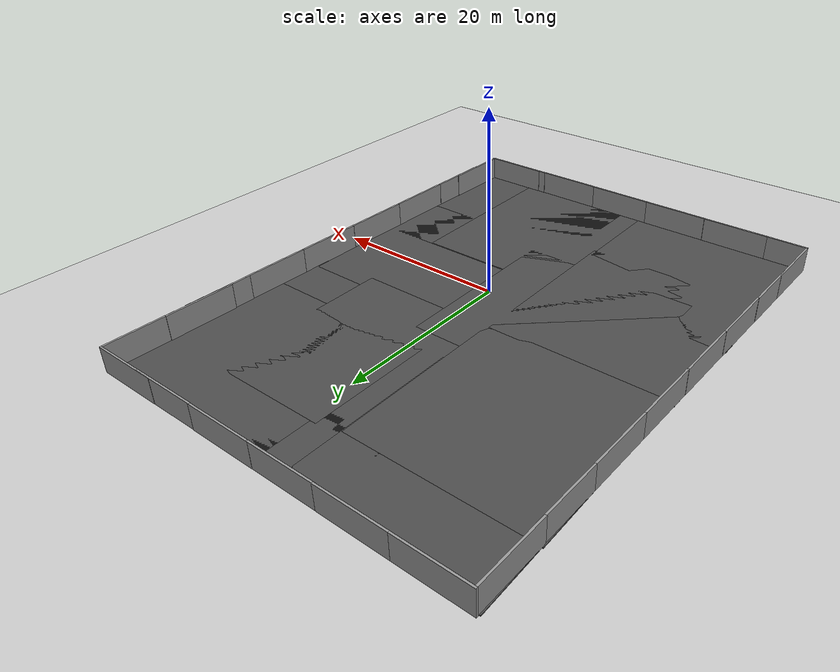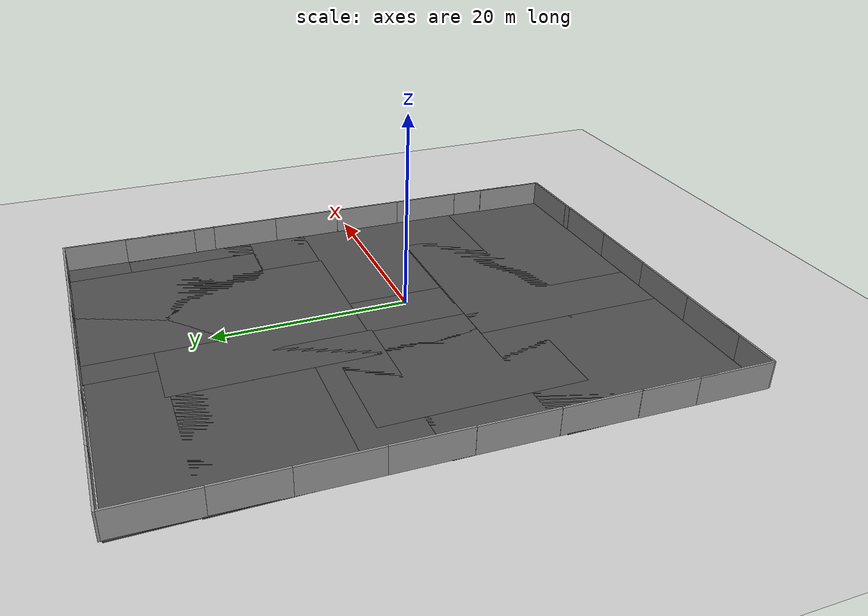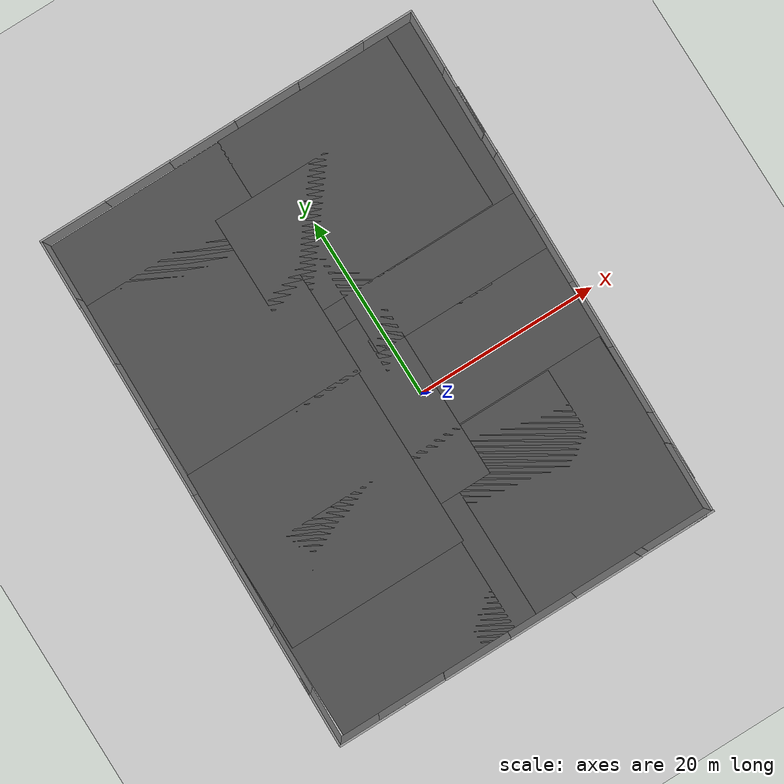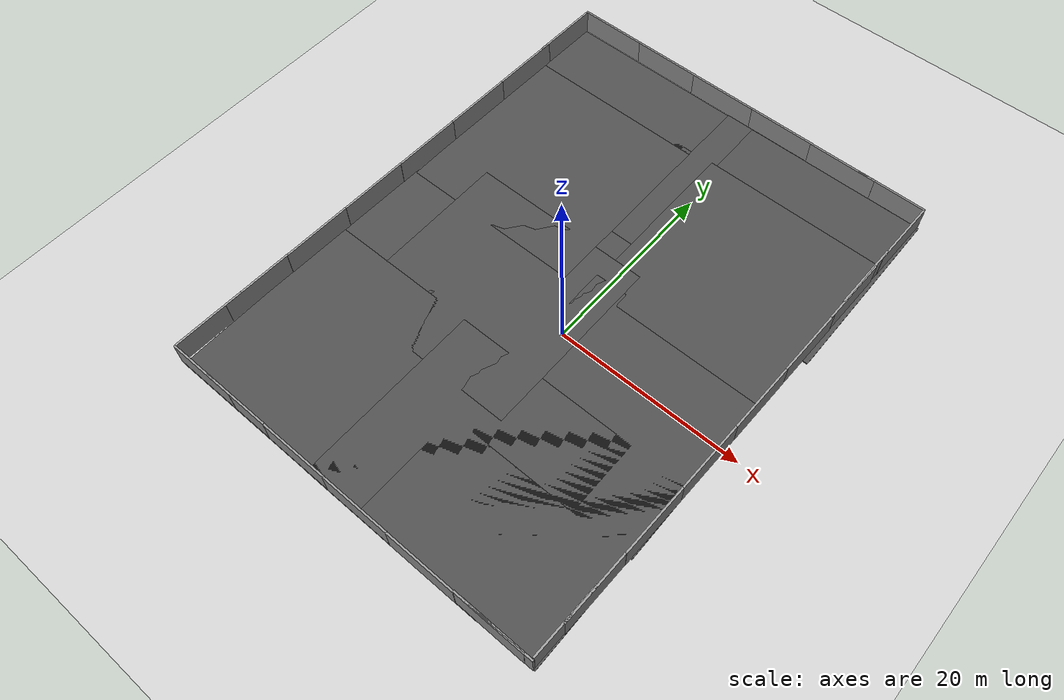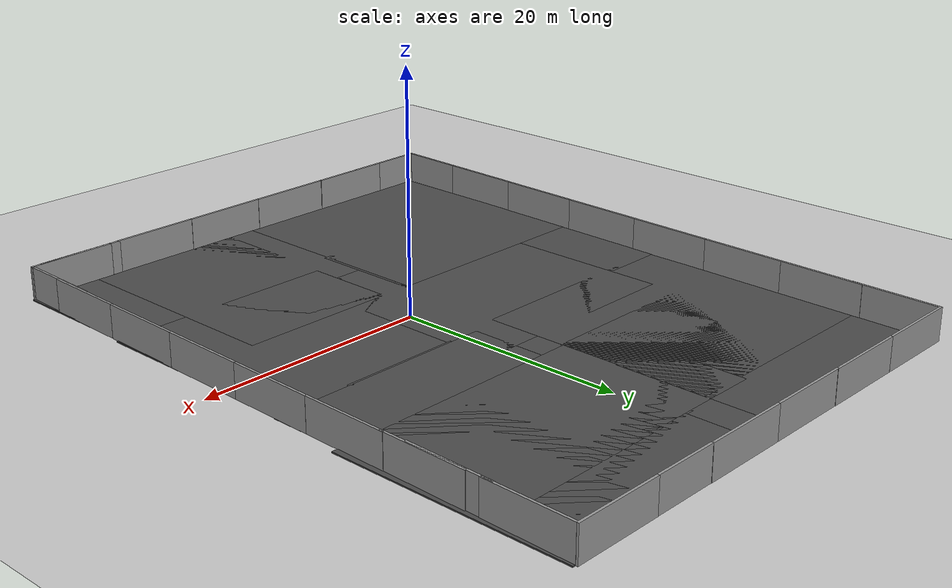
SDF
<sdf version="1.6">
 <world name="default">
  <physics name="default_physics" default="0" type="ode">
   <ode>
    <solver>
     <type>quick</type>
     <iters>20</iters>
     <sor>1</sor>
     <use_dynamic_moi_rescaling>0</use_dynamic_moi_rescaling>
    </solver>
    <constraints>
     <cfm>0</cfm>
     <erp>0.2</erp>
     <contact_max_correcting_vel>100</contact_max_correcting_vel>
     <contact_surface_layer>0</contact_surface_layer>
    </constraints>
   </ode>
   <max_step_size>0.001</max_step_size>
   <real_time_factor>1</real_time_factor>
   <real_time_update_rate>1000</real_time_update_rate>
  </physics>
  <light name="sun" type="directional">
   <pose>0 0 10 0 -0 0</pose>
   <diffuse>0.8 0.8 0.8 1</diffuse>
   <specular>0.1 0.1 0.1 1</specular>
   <attenuation>
    <range>1000</range>
    <constant>0.9</constant>
    <linear>0.01</linear>
    <quadratic>0.001</quadratic>
   </attenuation>
   <direction>-0.5 0.5 -1</direction>
  </light>
  <model name="ground_plane">
   <static>1</static>
   <link name="link">
    <collision name="collision">
     <geometry><plane><normal>0 0 1</normal><size>100 100</size></plane></geometry>
     <surface><friction><ode><mu>100</mu><mu2>50</mu2></ode></friction></surface>
    </collision>
    <visual name="visual">
     <cast_shadows>0</cast_shadows>
     <geometry><plane><normal>0 0 1</normal><size>100 100</size></plane></geometry>
     <material>
      <script><uri>file://media/materials/scripts/gazebo.material</uri><name>Gazebo/Grey</name></script>
     </material>
    </visual>
   </link>
  </model>
  <gravity>0 0 -9.8</gravity>
  <magnetic_field>6e-06 2.3e-05 -4.2e-05</magnetic_field>
  <atmosphere type="adiabatic"/>
  <scene><ambient>0.4 0.4 0.4 1</ambient><background>0.7 0.7 0.7 1</background><shadows>1</shadows></scene>
  <spherical_coordinates>
   <surface_model>EARTH_WGS84</surface_model>
   <latitude_deg>0</latitude_deg>
   <longitude_deg>0</longitude_deg>
   <elevation>0</elevation>
   <heading_deg>0</heading_deg>
  </spherical_coordinates>
  <model name="grey_wall_clone_4_clone_10_clone_5_clone">
   <static>1</static>
   <link name="link">
    <pose>0 0 1.4 0 -0 0</pose>
    <collision name="collision"><geometry><box><size>7.5 0.2 2.8</size></box></geometry></collision>
    <visual name="visual">
     <cast_shadows>0</cast_shadows>
     <geometry><box><size>7.5 0.2 2.8</size></box></geometry>
     <material>
      <script>
       <uri>model://grey_wall/materials/scripts</uri>
       <uri>model://grey_wall/materials/textures</uri>
       <name>vrc/grey_wall</name>
      </script>
     </material>
    </visual>
   </link>
   <pose>17.9559 -17.1408 0 0 -0 1.55043</pose>
  </model>
  <model name="grey_wall_clone_4_clone_10_clone_5_clone_0">
   <static>1</static>
   <link name="link">
    <pose>0 0 1.4 0 -0 0</pose>
    <collision name="collision"><geometry><box><size>7.5 0.2 2.8</size></box></geometry></collision>
    <visual name="visual">
     <cast_shadows>0</cast_shadows>
     <geometry><box><size>7.5 0.2 2.8</size></box></geometry>
     <material>
      <script>
       <uri>model://grey_wall/materials/scripts</uri>
       <uri>model://grey_wall/materials/textures</uri>
       <name>vrc/grey_wall</name>
      </script>
     </material>
    </visual>
   </link>
   <pose>18.1292 -9.70378 0 0 -0 1.55043</pose>
  </model>
  <model name="grey_wall_clone_4_clone_10_clone_5_clone_1">
   <static>1</static>
   <link name="link">
    <pose>0 0 1.4 0 -0 0</pose>
    <collision name="collision"><geometry><box><size>7.5 0.2 2.8</size></box></geometry></collision>
    <visual name="visual">
     <cast_shadows>0</cast_shadows>
     <geometry><box><size>7.5 0.2 2.8</size></box></geometry>
     <material>
      <script>
       <uri>model://grey_wall/materials/scripts</uri>
       <uri>model://grey_wall/materials/textures</uri>
       <name>vrc/grey_wall</name>
      </script>
     </material>
    </visual>
   </link>
   <pose>18.2818 -2.24012 0 0 -0 1.55043</pose>
  </model>
  <model name="grey_wall_clone_4_clone_10_clone_5_clone_2">
   <static>1</static>
   <link name="link">
    <pose>0 0 1.4 0 -0 0</pose>
    <collision name="collision"><geometry><box><size>7.5 0.2 2.8</size></box></geometry></collision>
    <visual name="visual">
     <cast_shadows>0</cast_shadows>
     <geometry><box><size>7.5 0.2 2.8</size></box></geometry>
     <material>
      <script>
       <uri>model://grey_wall/materials/scripts</uri>
       <uri>model://grey_wall/materials/textures</uri>
       <name>vrc/grey_wall</name>
      </script>
     </material>
    </visual>
   </link>
   <pose>18.439 5.22229 0 0 -0 1.55043</pose>
  </model>
  <model name="grey_wall_clone_4_clone_10_clone_5_clone_3">
   <static>1</static>
   <link name="link">
    <pose>0 0 1.4 0 -0 0</pose>
    <collision name="collision"><geometry><box><size>7.5 0.2 2.8</size></box></geometry></collision>
    <visual name="visual">
     <cast_shadows>0</cast_shadows>
     <geometry><box><size>7.5 0.2 2.8</size></box></geometry>
     <material>
      <script>
       <uri>model://grey_wall/materials/scripts</uri>
       <uri>model://grey_wall/materials/textures</uri>
       <name>vrc/grey_wall</name>
      </script>
     </material>
    </visual>
   </link>
   <pose>18.5808 12.6353 0 0 -0 1.55043</pose>
  </model>
  <model name="grey_wall_clone_4_clone_10_clone_5_clone_4">
   <static>1</static>
   <link name="link">
    <pose>0 0 1.4 0 -0 0</pose>
    <collision name="collision"><geometry><box><size>7.5 0.2 2.8</size></box></geometry></collision>
    <visual name="visual">
     <cast_shadows>0</cast_shadows>
     <geometry><box><size>7.5 0.2 2.8</size></box></geometry>
     <material>
      <script>
       <uri>model://grey_wall/materials/scripts</uri>
       <uri>model://grey_wall/materials/textures</uri>
       <name>vrc/grey_wall</name>
      </script>
     </material>
    </visual>
   </link>
   <pose>18.6929 19.7573 0 0 -0 1.55043</pose>
  </model>
  <model name="grey_wall_clone_4_clone_4_clone_0">
   <static>1</static>
   <link name="link">
    <pose>0 0 1.4 0 -0 0</pose>
    <collision name="collision"><geometry><box><size>7.5 0.2 2.8</size></box></geometry></collision>
    <visual name="visual">
     <cast_shadows>0</cast_shadows>
     <geometry><box><size>7.5 0.2 2.8</size></box></geometry>
     <material>
      <script>
       <uri>model://grey_wall/materials/scripts</uri>
       <uri>model://grey_wall/materials/textures</uri>
       <name>vrc/grey_wall</name>
      </script>
     </material>
    </visual>
   </link>
   <pose>5.85769 -24.6094 0 0 -0 0</pose>
  </model>
  <model name="grey_wall_clone_4_clone_4_clone_1">
   <static>1</static>
   <link name="link">
    <pose>0 0 1.4 0 -0 0</pose>
    <collision name="collision"><geometry><box><size>7.5 0.2 2.8</size></box></geometry></collision>
    <visual name="visual">
     <cast_shadows>0</cast_shadows>
     <geometry><box><size>7.5 0.2 2.8</size></box></geometry>
     <material>
      <script>
       <uri>model://grey_wall/materials/scripts</uri>
       <uri>model://grey_wall/materials/textures</uri>
       <name>vrc/grey_wall</name>
      </script>
     </material>
    </visual>
   </link>
   <pose>-1.63442 -24.5905 0 0 -0 0</pose>
  </model>
  <model name="grey_wall_clone_4_clone_4_clone_2">
   <static>1</static>
   <link name="link">
    <pose>0 0 1.4 0 -0 0</pose>
    <collision name="collision"><geometry><box><size>7.5 0.2 2.8</size></box></geometry></collision>
    <visual name="visual">
     <cast_shadows>0</cast_shadows>
     <geometry><box><size>7.5 0.2 2.8</size></box></geometry>
     <material>
      <script>
       <uri>model://grey_wall/materials/scripts</uri>
       <uri>model://grey_wall/materials/textures</uri>
       <name>vrc/grey_wall</name>
      </script>
     </material>
    </visual>
   </link>
   <pose>-9.02914 -24.5695 0 0 -0 0</pose>
  </model>
  <model name="grey_wall_clone_4_clone_4_clone_3">
   <static>1</static>
   <link name="link">
    <pose>0 0 1.4 0 -0 0</pose>
    <collision name="collision"><geometry><box><size>7.5 0.2 2.8</size></box></geometry></collision>
    <visual name="visual">
     <cast_shadows>0</cast_shadows>
     <geometry><box><size>7.5 0.2 2.8</size></box></geometry>
     <material>
      <script>
       <uri>model://grey_wall/materials/scripts</uri>
       <uri>model://grey_wall/materials/textures</uri>
       <name>vrc/grey_wall</name>
      </script>
     </material>
    </visual>
   </link>
   <pose>-16.5646 -24.5519 0 0 -0 0</pose>
  </model>
  <model name="grey_wall_clone_4_clone_4_clone_4">
   <static>1</static>
   <link name="link">
    <pose>0 0 1.4 0 -0 0</pose>
    <collision name="collision"><geometry><box><size>7.5 0.2 2.8</size></box></geometry></collision>
    <visual name="visual">
     <cast_shadows>0</cast_shadows>
     <geometry><box><size>7.5 0.2 2.8</size></box></geometry>
     <material>
      <script>
       <uri>model://grey_wall/materials/scripts</uri>
       <uri>model://grey_wall/materials/textures</uri>
       <name>vrc/grey_wall</name>
      </script>
     </material>
    </visual>
   </link>
   <pose>-21.0772 -24.5581 0 0 -0 0</pose>
  </model>
  <model name="grey_wall_clone_4_clone_5_clone">
   <static>1</static>
   <link name="link">
    <pose>0 0 1.4 0 -0 0</pose>
    <collision name="collision"><geometry><box><size>7.5 0.2 2.8</size></box></geometry></collision>
    <visual name="visual">
     <cast_shadows>0</cast_shadows>
     <geometry><box><size>7.5 0.2 2.8</size></box></geometry>
     <material>
      <script>
       <uri>model://grey_wall/materials/scripts</uri>
       <uri>model://grey_wall/materials/textures</uri>
       <name>vrc/grey_wall</name>
      </script>
     </material>
    </visual>
   </link>
   <pose>13.2695 -24.5712 0 0 -0 0</pose>
  </model>
  <model name="asphalt_plane_0">
   <static>1</static>
   <link name="link">
    <collision name="collision"><geometry><box><size>20 20 0.1</size></box></geometry></collision>
    <visual name="visual">
     <cast_shadows>0</cast_shadows>
     <geometry><box><size>20 20 0.1</size></box></geometry>
     <material>
      <script>
       <uri>model://asphalt_plane/materials/scripts</uri>
       <uri>model://asphalt_plane/materials/textures</uri>
       <name>vrc/asphalt</name>
      </script>
     </material>
    </visual>
   </link>
   <pose>-13.9073 15.0429 0 0 -0 0</pose>
  </model>
  <model name="asphalt_plane_0_clone">
   <static>1</static>
   <link name="link">
    <collision name="collision"><geometry><box><size>20 20 0.1</size></box></geometry></collision>
    <visual name="visual">
     <cast_shadows>0</cast_shadows>
     <geometry><box><size>20 20 0.1</size></box></geometry>
     <material>
      <script>
       <uri>model://asphalt_plane/materials/scripts</uri>
       <uri>model://asphalt_plane/materials/textures</uri>
       <name>vrc/asphalt</name>
      </script>
     </material>
    </visual>
   </link>
   <pose>-14.1807 -4.53437 0 0 -0 0</pose>
  </model>
  <model name="asphalt_plane_0_clone_0">
   <static>1</static>
   <link name="link">
    <collision name="collision"><geometry><box><size>20 20 0.1</size></box></geometry></collision>
    <visual name="visual">
     <cast_shadows>0</cast_shadows>
     <geometry><box><size>20 20 0.1</size></box></geometry>
     <material>
      <script>
       <uri>model://asphalt_plane/materials/scripts</uri>
       <uri>model://asphalt_plane/materials/textures</uri>
       <name>vrc/asphalt</name>
      </script>
     </material>
    </visual>
   </link>
   <pose>-14.4525 -14.6748 0 0 -0 0</pose>
  </model>
  <model name="asphalt_plane_0_clone_1">
   <static>1</static>
   <link name="link">
    <collision name="collision"><geometry><box><size>20 20 0.1</size></box></geometry></collision>
    <visual name="visual">
     <cast_shadows>0</cast_shadows>
     <geometry><box><size>20 20 0.1</size></box></geometry>
     <material>
      <script>
       <uri>model://asphalt_plane/materials/scripts</uri>
       <uri>model://asphalt_plane/materials/textures</uri>
       <name>vrc/asphalt</name>
      </script>
     </material>
    </visual>
   </link>
   <pose>1.77095 15.499 0 0 -0 0</pose>
  </model>
  <model name="asphalt_plane_0_clone_3">
   <static>1</static>
   <link name="link">
    <collision name="collision"><geometry><box><size>20 20 0.1</size></box></geometry></collision>
    <visual name="visual">
     <cast_shadows>0</cast_shadows>
     <geometry><box><size>20 20 0.1</size></box></geometry>
     <material>
      <script>
       <uri>model://asphalt_plane/materials/scripts</uri>
       <uri>model://asphalt_plane/materials/textures</uri>
       <name>vrc/asphalt</name>
      </script>
     </material>
    </visual>
   </link>
   <pose>1.90895 -14.6912 0 0 -0 0</pose>
  </model>
  <model name="asphalt_plane_0_clone_4">
   <static>1</static>
   <link name="link">
    <collision name="collision"><geometry><box><size>20 20 0.1</size></box></geometry></collision>
    <visual name="visual">
     <cast_shadows>0</cast_shadows>
     <geometry><box><size>20 20 0.1</size></box></geometry>
     <material>
      <script>
       <uri>model://asphalt_plane/materials/scripts</uri>
       <uri>model://asphalt_plane/materials/textures</uri>
       <name>vrc/asphalt</name>
      </script>
     </material>
    </visual>
   </link>
   <pose>8.54325 15.6754 0 0 -0 0</pose>
  </model>
  <model name="asphalt_plane_0_clone_5">
   <static>1</static>
   <link name="link">
    <collision name="collision"><geometry><box><size>20 20 0.1</size></box></geometry></collision>
    <visual name="visual">
     <cast_shadows>0</cast_shadows>
     <geometry><box><size>20 20 0.1</size></box></geometry>
     <material>
      <script>
       <uri>model://asphalt_plane/materials/scripts</uri>
       <uri>model://asphalt_plane/materials/textures</uri>
       <name>vrc/asphalt</name>
      </script>
     </material>
    </visual>
   </link>
   <pose>8.28421 -2.72401 0 0 -0 0</pose>
  </model>
  <model name="asphalt_plane_0_clone_6">
   <static>1</static>
   <link name="link">
    <collision name="collision"><geometry><box><size>20 20 0.1</size></box></geometry></collision>
    <visual name="visual">
     <cast_shadows>0</cast_shadows>
     <geometry><box><size>20 20 0.1</size></box></geometry>
     <material>
      <script>
       <uri>model://asphalt_plane/materials/scripts</uri>
       <uri>model://asphalt_plane/materials/textures</uri>
       <name>vrc/asphalt</name>
      </script>
     </material>
    </visual>
   </link>
   <pose>8.02443 -14.5626 0 0 -0 0</pose>
  </model>
  <model name="grey_wall_clone_4_clone_10_clone_5_clone_4_clone">
   <static>1</static>
   <link name="link">
    <pose>0 0 1.4 0 -0 0</pose>
    <collision name="collision"><geometry><box><size>7.5 0.2 2.8</size></box></geometry></collision>
    <visual name="visual">
     <cast_shadows>0</cast_shadows>
     <geometry><box><size>7.5 0.2 2.8</size></box></geometry>
     <material>
      <script>
       <uri>model://grey_wall/materials/scripts</uri>
       <uri>model://grey_wall/materials/textures</uri>
       <name>vrc/grey_wall</name>
      </script>
     </material>
    </visual>
   </link>
   <pose>18.6611 21.9833 0 0 -0 1.55043</pose>
  </model>
  <model name="grey_wall_clone_4_clone_10_clone_5_clone_4_clone_2">
   <static>1</static>
   <link name="link">
    <pose>0 0 1.4 0 -0 0</pose>
    <collision name="collision"><geometry><box><size>7.5 0.2 2.8</size></box></geometry></collision>
    <visual name="visual">
     <cast_shadows>0</cast_shadows>
     <geometry><box><size>7.5 0.2 2.8</size></box></geometry>
     <material>
      <script>
       <uri>model://grey_wall/materials/scripts</uri>
       <uri>model://grey_wall/materials/textures</uri>
       <name>vrc/grey_wall</name>
      </script>
     </material>
    </visual>
   </link>
   <pose>17.8233 -20.6305 0 0 -0 1.55043</pose>
  </model>
  <model name="grey_wall_clone_4_clone_4_clone_4_clone_0">
   <static>1</static>
   <link name="link">
    <pose>0 0 1.4 0 -0 0</pose>
    <collision name="collision"><geometry><box><size>7.5 0.2 2.8</size></box></geometry></collision>
    <visual name="visual">
     <cast_shadows>0</cast_shadows>
     <geometry><box><size>7.5 0.2 2.8</size></box></geometry>
     <material>
      <script>
       <uri>model://grey_wall/materials/scripts</uri>
       <uri>model://grey_wall/materials/textures</uri>
       <name>vrc/grey_wall</name>
      </script>
     </material>
    </visual>
   </link>
   <pose>14.1474 -24.5497 0 0 -0 0</pose>
  </model>
  <model name="asphalt_plane_0_clone_2">
   <static>1</static>
   <link name="link">
    <collision name="collision"><geometry><box><size>20 20 0.1</size></box></geometry></collision>
    <visual name="visual">
     <cast_shadows>0</cast_shadows>
     <geometry><box><size>20 20 0.1</size></box></geometry>
     <material>
      <script>
       <uri>model://asphalt_plane/materials/scripts</uri>
       <uri>model://asphalt_plane/materials/textures</uri>
       <name>vrc/asphalt</name>
      </script>
     </material>
    </visual>
   </link>
   <pose>-8.40268 -0.283725 0 0 -0 0</pose>
  </model>
  <model name="grey_wall_clone_4_clone_10_clone_5_clone_4_clone_0_clone">
   <static>1</static>
   <link name="link">
    <pose>0 0 1.4 0 -0 0</pose>
    <collision name="collision"><geometry><box><size>7.5 0.2 2.8</size></box></geometry></collision>
    <visual name="visual">
     <cast_shadows>0</cast_shadows>
     <geometry><box><size>7.5 0.2 2.8</size></box></geometry>
     <material>
      <script>
       <uri>model://grey_wall/materials/scripts</uri>
       <uri>model://grey_wall/materials/textures</uri>
       <name>vrc/grey_wall</name>
      </script>
     </material>
    </visual>
   </link>
   <pose>-23.7534 21.9425 0 0 -0 1.55043</pose>
  </model>
  <model name="grey_wall_clone_4_clone_10_clone_5_clone_4_clone_0_clone_0">
   <static>1</static>
   <link name="link">
    <pose>0 0 1.4 0 -0 0</pose>
    <collision name="collision"><geometry><box><size>7.5 0.2 2.8</size></box></geometry></collision>
    <visual name="visual">
     <cast_shadows>0</cast_shadows>
     <geometry><box><size>7.5 0.2 2.8</size></box></geometry>
     <material>
      <script>
       <uri>model://grey_wall/materials/scripts</uri>
       <uri>model://grey_wall/materials/textures</uri>
       <name>vrc/grey_wall</name>
      </script>
     </material>
    </visual>
   </link>
   <pose>-23.8983 14.5577 0 0 -0 1.55043</pose>
  </model>
  <model name="grey_wall_clone_4_clone_10_clone_5_clone_4_clone_0_clone_1">
   <static>1</static>
   <link name="link">
    <pose>0 0 1.4 0 -0 0</pose>
    <collision name="collision"><geometry><box><size>7.5 0.2 2.8</size></box></geometry></collision>
    <visual name="visual">
     <cast_shadows>0</cast_shadows>
     <geometry><box><size>7.5 0.2 2.8</size></box></geometry>
     <material>
      <script>
       <uri>model://grey_wall/materials/scripts</uri>
       <uri>model://grey_wall/materials/textures</uri>
       <name>vrc/grey_wall</name>
      </script>
     </material>
    </visual>
   </link>
   <pose>-24.0467 7.13206 0 0 -0 1.55043</pose>
  </model>
  <model name="grey_wall_clone_4_clone_10_clone_5_clone_4_clone_0_clone_2">
   <static>1</static>
   <link name="link">
    <pose>0 0 1.4 0 -0 0</pose>
    <collision name="collision"><geometry><box><size>7.5 0.2 2.8</size></box></geometry></collision>
    <visual name="visual">
     <cast_shadows>0</cast_shadows>
     <geometry><box><size>7.5 0.2 2.8</size></box></geometry>
     <material>
      <script>
       <uri>model://grey_wall/materials/scripts</uri>
       <uri>model://grey_wall/materials/textures</uri>
       <name>vrc/grey_wall</name>
      </script>
     </material>
    </visual>
   </link>
   <pose>-24.2152 -0.232448 0 0 -0 1.55043</pose>
  </model>
  <model name="grey_wall_clone_4_clone_10_clone_5_clone_4_clone_0_clone_3">
   <static>1</static>
   <link name="link">
    <pose>0 0 1.4 0 -0 0</pose>
    <collision name="collision"><geometry><box><size>7.5 0.2 2.8</size></box></geometry></collision>
    <visual name="visual">
     <cast_shadows>0</cast_shadows>
     <geometry><box><size>7.5 0.2 2.8</size></box></geometry>
     <material>
      <script>
       <uri>model://grey_wall/materials/scripts</uri>
       <uri>model://grey_wall/materials/textures</uri>
       <name>vrc/grey_wall</name>
      </script>
     </material>
    </visual>
   </link>
   <pose>-24.384 -7.70787 0 0 -0 1.55043</pose>
  </model>
  <model name="grey_wall_clone_4_clone_10_clone_5_clone_4_clone_0_clone_4">
   <static>1</static>
   <link name="link">
    <pose>0 0 1.4 0 -0 0</pose>
    <collision name="collision"><geometry><box><size>7.5 0.2 2.8</size></box></geometry></collision>
    <visual name="visual">
     <cast_shadows>0</cast_shadows>
     <geometry><box><size>7.5 0.2 2.8</size></box></geometry>
     <material>
      <script>
       <uri>model://grey_wall/materials/scripts</uri>
       <uri>model://grey_wall/materials/textures</uri>
       <name>vrc/grey_wall</name>
      </script>
     </material>
    </visual>
   </link>
   <pose>-24.5611 -15.0505 0 0 -0 1.55043</pose>
  </model>
  <model name="grey_wall_clone_4_clone_10_clone_5_clone_4_clone_0_clone_5">
   <static>1</static>
   <link name="link">
    <pose>0 0 1.4 0 -0 0</pose>
    <collision name="collision"><geometry><box><size>7.5 0.2 2.8</size></box></geometry></collision>
    <visual name="visual">
     <cast_shadows>0</cast_shadows>
     <geometry><box><size>7.5 0.2 2.8</size></box></geometry>
     <material>
      <script>
       <uri>model://grey_wall/materials/scripts</uri>
       <uri>model://grey_wall/materials/textures</uri>
       <name>vrc/grey_wall</name>
      </script>
     </material>
    </visual>
   </link>
   <pose>-24.686 -20.7306 0 0 -0 1.55043</pose>
  </model>
  <model name="grey_wall_clone_4_clone_10_clone_5_clone_4_clone_0_clone_clone">
   <static>1</static>
   <link name="link">
    <pose>0 0 1.4 0 -0 0</pose>
    <collision name="collision"><geometry><box><size>7.5 0.2 2.8</size></box></geometry></collision>
    <visual name="visual">
     <cast_shadows>0</cast_shadows>
     <geometry><box><size>7.5 0.2 2.8</size></box></geometry>
     <material>
      <script>
       <uri>model://grey_wall/materials/scripts</uri>
       <uri>model://grey_wall/materials/textures</uri>
       <name>vrc/grey_wall</name>
      </script>
     </material>
    </visual>
   </link>
   <pose>-23.6518 28.3725 0 0 -0 1.55043</pose>
  </model>
  <model name="grey_wall_clone_4_clone_4_clone_5_clone_4_clone_clone">
   <static>1</static>
   <link name="link">
    <pose>0 0 1.4 0 -0 0</pose>
    <collision name="collision"><geometry><box><size>7.5 0.2 2.8</size></box></geometry></collision>
    <visual name="visual">
     <cast_shadows>0</cast_shadows>
     <geometry><box><size>7.5 0.2 2.8</size></box></geometry>
     <material>
      <script>
       <uri>model://grey_wall/materials/scripts</uri>
       <uri>model://grey_wall/materials/textures</uri>
       <name>vrc/grey_wall</name>
      </script>
     </material>
    </visual>
   </link>
   <pose>-19.9359 32.223 0 0 -0 0</pose>
  </model>
  <model name="grey_wall_clone_4_clone_4_clone_5_clone_3_clone">
   <static>1</static>
   <link name="link">
    <pose>0 0 1.4 0 -0 0</pose>
    <collision name="collision"><geometry><box><size>7.5 0.2 2.8</size></box></geometry></collision>
    <visual name="visual">
     <cast_shadows>0</cast_shadows>
     <geometry><box><size>7.5 0.2 2.8</size></box></geometry>
     <material>
      <script>
       <uri>model://grey_wall/materials/scripts</uri>
       <uri>model://grey_wall/materials/textures</uri>
       <name>vrc/grey_wall</name>
      </script>
     </material>
    </visual>
   </link>
   <pose>-12.4575 32.2197 0 0 -0 0</pose>
  </model>
  <model name="grey_wall_clone_4_clone_4_clone_5_clone_3_clone_0">
   <static>1</static>
   <link name="link">
    <pose>0 0 1.4 0 -0 0</pose>
    <collision name="collision"><geometry><box><size>7.5 0.2 2.8</size></box></geometry></collision>
    <visual name="visual">
     <cast_shadows>0</cast_shadows>
     <geometry><box><size>7.5 0.2 2.8</size></box></geometry>
     <material>
      <script>
       <uri>model://grey_wall/materials/scripts</uri>
       <uri>model://grey_wall/materials/textures</uri>
       <name>vrc/grey_wall</name>
      </script>
     </material>
    </visual>
   </link>
   <pose>-5.14754 32.1971 0 0 -0 0</pose>
  </model>
  <model name="grey_wall_clone_4_clone_4_clone_5_clone_3_clone_1">
   <static>1</static>
   <link name="link">
    <pose>0 0 1.4 0 -0 0</pose>
    <collision name="collision"><geometry><box><size>7.5 0.2 2.8</size></box></geometry></collision>
    <visual name="visual">
     <cast_shadows>0</cast_shadows>
     <geometry><box><size>7.5 0.2 2.8</size></box></geometry>
     <material>
      <script>
       <uri>model://grey_wall/materials/scripts</uri>
       <uri>model://grey_wall/materials/textures</uri>
       <name>vrc/grey_wall</name>
      </script>
     </material>
    </visual>
   </link>
   <pose>2.22157 32.2017 0 0 -0 0</pose>
  </model>
  <model name="grey_wall_clone_4_clone_4_clone_5_clone_3_clone_2">
   <static>1</static>
   <link name="link">
    <pose>0 0 1.4 0 -0 0</pose>
    <collision name="collision"><geometry><box><size>7.5 0.2 2.8</size></box></geometry></collision>
    <visual name="visual">
     <cast_shadows>0</cast_shadows>
     <geometry><box><size>7.5 0.2 2.8</size></box></geometry>
     <material>
      <script>
       <uri>model://grey_wall/materials/scripts</uri>
       <uri>model://grey_wall/materials/textures</uri>
       <name>vrc/grey_wall</name>
      </script>
     </material>
    </visual>
   </link>
   <pose>9.58599 32.1737 0 0 -0 0</pose>
  </model>
  <model name="grey_wall_clone_4_clone_4_clone_5_clone_3_clone_3">
   <static>1</static>
   <link name="link">
    <pose>0 0 1.4 0 -0 0</pose>
    <collision name="collision"><geometry><box><size>7.5 0.2 2.8</size></box></geometry></collision>
    <visual name="visual">
     <cast_shadows>0</cast_shadows>
     <geometry><box><size>7.5 0.2 2.8</size></box></geometry>
     <material>
      <script>
       <uri>model://grey_wall/materials/scripts</uri>
       <uri>model://grey_wall/materials/textures</uri>
       <name>vrc/grey_wall</name>
      </script>
     </material>
    </visual>
   </link>
   <pose>15.2441 32.1901 0 0 -0 0</pose>
  </model>
  <model name="grey_wall_clone_4_clone_10_clone_5_clone_4_clone_clone">
   <static>1</static>
   <link name="link">
    <pose>0 0 1.4 0 -0 0</pose>
    <collision name="collision"><geometry><box><size>7.5 0.2 2.8</size></box></geometry></collision>
    <visual name="visual">
     <cast_shadows>0</cast_shadows>
     <geometry><box><size>7.5 0.2 2.8</size></box></geometry>
     <material>
      <script>
       <uri>model://grey_wall/materials/scripts</uri>
       <uri>model://grey_wall/materials/textures</uri>
       <name>vrc/grey_wall</name>
      </script>
     </material>
    </visual>
   </link>
   <pose>18.8287 28.3696 0 0 -0 1.55043</pose>
  </model>
  <model name="asphalt_plane_0_clone_7">
   <static>1</static>
   <link name="link">
    <collision name="collision"><geometry><box><size>20 20 0.1</size></box></geometry></collision>
    <visual name="visual">
     <cast_shadows>0</cast_shadows>
     <geometry><box><size>20 20 0.1</size></box></geometry>
     <material>
      <script>
       <uri>model://asphalt_plane/materials/scripts</uri>
       <uri>model://asphalt_plane/materials/textures</uri>
       <name>vrc/asphalt</name>
      </script>
     </material>
    </visual>
   </link>
   <pose>-13.8121 22.019 0 0 -0 0</pose>
  </model>
  <model name="asphalt_plane_0_clone_8">
   <static>1</static>
   <link name="link">
    <collision name="collision"><geometry><box><size>20 20 0.1</size></box></geometry></collision>
    <visual name="visual">
     <cast_shadows>0</cast_shadows>
     <geometry><box><size>20 20 0.1</size></box></geometry>
     <material>
      <script>
       <uri>model://asphalt_plane/materials/scripts</uri>
       <uri>model://asphalt_plane/materials/textures</uri>
       <name>vrc/asphalt</name>
      </script>
     </material>
    </visual>
   </link>
   <pose>6.07155 22.2053 0 0 -0 0</pose>
  </model>
  <model name="asphalt_plane_0_clone_9">
   <static>1</static>
   <link name="link">
    <collision name="collision"><geometry><box><size>20 20 0.1</size></box></geometry></collision>
    <visual name="visual">
     <cast_shadows>0</cast_shadows>
     <geometry><box><size>20 20 0.1</size></box></geometry>
     <material>
      <script>
       <uri>model://asphalt_plane/materials/scripts</uri>
       <uri>model://asphalt_plane/materials/textures</uri>
       <name>vrc/asphalt</name>
      </script>
     </material>
    </visual>
   </link>
   <pose>9.18591 22.0845 0 0 -0 0</pose>
  </model>
 </world>
</sdf>
